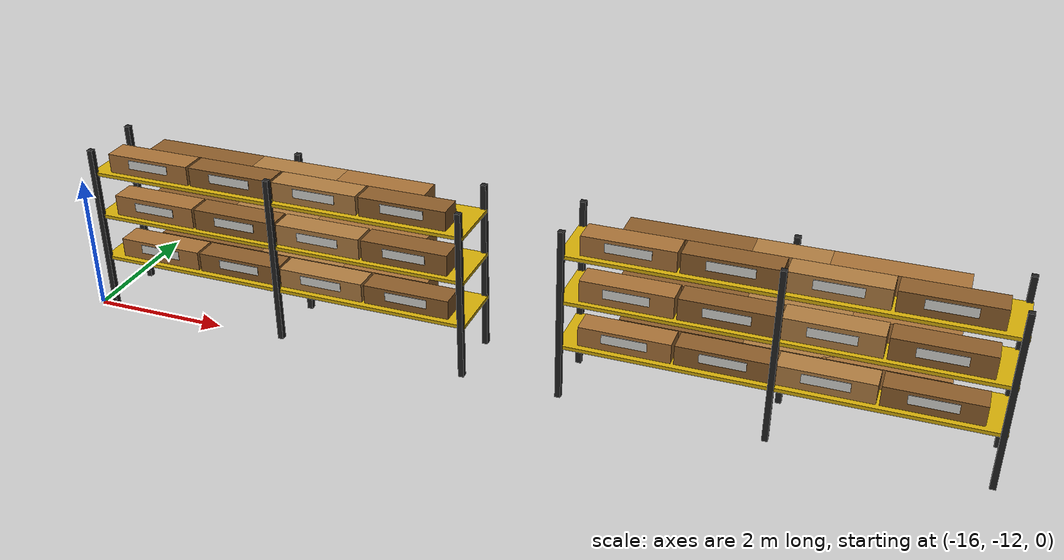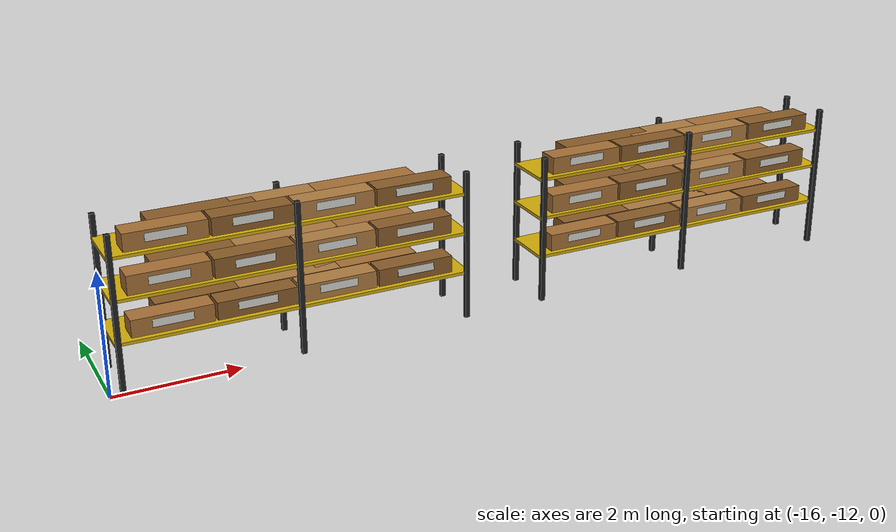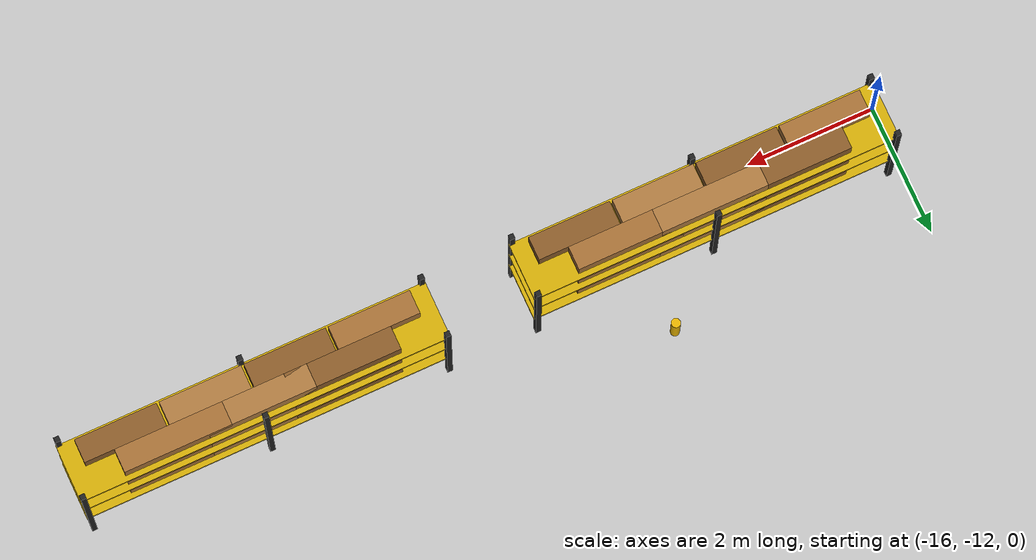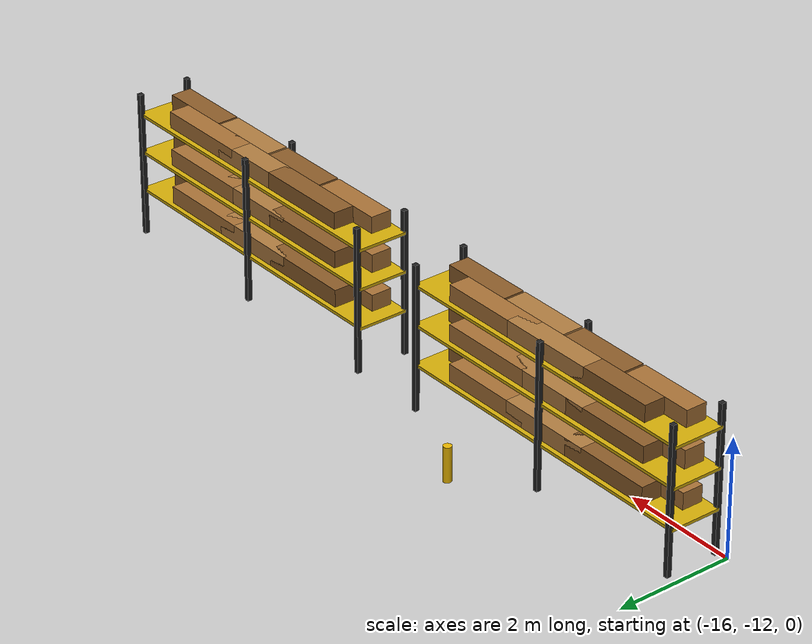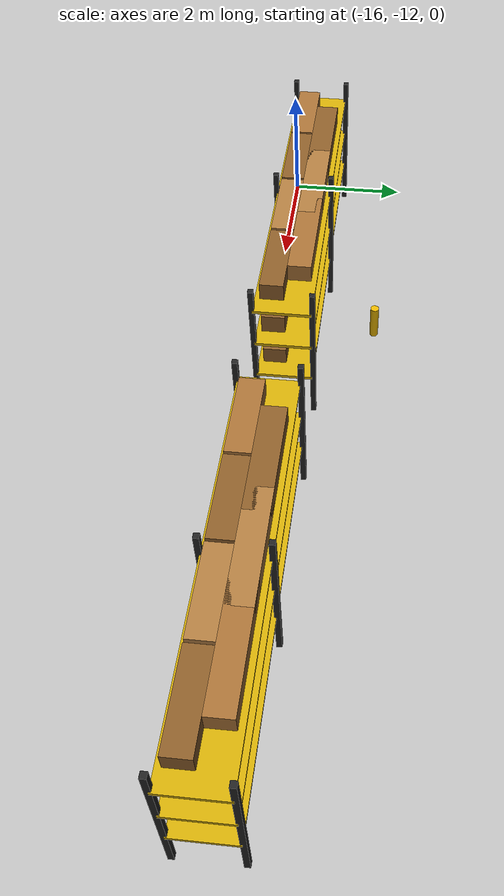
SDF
<sdf version="1.6">
 <world name="aws_industrial_warehouse">
  <model name="shelf_S2">
   <static>true</static>
   <pose>-13 -11.5 0 0 0 0</pose>
   <link name="pFL">
    <pose>-2.8 -0.45 1.25 0 0 0</pose>
    <collision name="c">
     <geometry><box><size>0.08 0.08 2.5</size></box></geometry>
     <surface><friction><ode><mu>1.0</mu><mu2>1.0</mu2></ode></friction></surface>
    </collision>
    <visual name="v">
     <geometry><box><size>0.08 0.08 2.5</size></box></geometry>
     <material><ambient>0.10 0.10 0.10 1</ambient><diffuse>0.13 0.13 0.13 1</diffuse></material>
    </visual>
   </link>
   <link name="pBL">
    <pose>-2.8 0.45 1.25 0 0 0</pose>
    <collision name="c">
     <geometry><box><size>0.08 0.08 2.5</size></box></geometry>
     <surface><friction><ode><mu>1.0</mu><mu2>1.0</mu2></ode></friction></surface>
    </collision>
    <visual name="v">
     <geometry><box><size>0.08 0.08 2.5</size></box></geometry>
     <material><ambient>0.10 0.10 0.10 1</ambient><diffuse>0.13 0.13 0.13 1</diffuse></material>
    </visual>
   </link>
   <link name="pFC">
    <pose>0.0 -0.45 1.25 0 0 0</pose>
    <collision name="c">
     <geometry><box><size>0.08 0.08 2.5</size></box></geometry>
     <surface><friction><ode><mu>1.0</mu><mu2>1.0</mu2></ode></friction></surface>
    </collision>
    <visual name="v">
     <geometry><box><size>0.08 0.08 2.5</size></box></geometry>
     <material><ambient>0.10 0.10 0.10 1</ambient><diffuse>0.13 0.13 0.13 1</diffuse></material>
    </visual>
   </link>
   <link name="pBC">
    <pose>0.0 0.45 1.25 0 0 0</pose>
    <collision name="c">
     <geometry><box><size>0.08 0.08 2.5</size></box></geometry>
     <surface><friction><ode><mu>1.0</mu><mu2>1.0</mu2></ode></friction></surface>
    </collision>
    <visual name="v">
     <geometry><box><size>0.08 0.08 2.5</size></box></geometry>
     <material><ambient>0.10 0.10 0.10 1</ambient><diffuse>0.13 0.13 0.13 1</diffuse></material>
    </visual>
   </link>
   <link name="pFR">
    <pose>2.8 -0.45 1.25 0 0 0</pose>
    <collision name="c">
     <geometry><box><size>0.08 0.08 2.5</size></box></geometry>
     <surface><friction><ode><mu>1.0</mu><mu2>1.0</mu2></ode></friction></surface>
    </collision>
    <visual name="v">
     <geometry><box><size>0.08 0.08 2.5</size></box></geometry>
     <material><ambient>0.10 0.10 0.10 1</ambient><diffuse>0.13 0.13 0.13 1</diffuse></material>
    </visual>
   </link>
   <link name="pBR">
    <pose>2.8 0.45 1.25 0 0 0</pose>
    <collision name="c">
     <geometry><box><size>0.08 0.08 2.5</size></box></geometry>
     <surface><friction><ode><mu>1.0</mu><mu2>1.0</mu2></ode></friction></surface>
    </collision>
    <visual name="v">
     <geometry><box><size>0.08 0.08 2.5</size></box></geometry>
     <material><ambient>0.10 0.10 0.10 1</ambient><diffuse>0.13 0.13 0.13 1</diffuse></material>
    </visual>
   </link>
   <link name="deck1">
    <pose>0 0 0.77 0 0 0</pose>
    <collision name="c">
     <geometry><box><size>5.7 0.88 0.05</size></box></geometry>
     <surface><friction><ode><mu>1.0</mu><mu2>1.0</mu2></ode></friction></surface>
    </collision>
    <visual name="v">
     <geometry><box><size>5.7 0.88 0.05</size></box></geometry>
     <material><ambient>0.70 0.55 0.02 1</ambient><diffuse>0.82 0.67 0.03 1</diffuse></material>
    </visual>
   </link>
   <link name="deck2">
    <pose>0 0 1.45 0 0 0</pose>
    <collision name="c">
     <geometry><box><size>5.7 0.88 0.05</size></box></geometry>
     <surface><friction><ode><mu>1.0</mu><mu2>1.0</mu2></ode></friction></surface>
    </collision>
    <visual name="v">
     <geometry><box><size>5.7 0.88 0.05</size></box></geometry>
     <material><ambient>0.70 0.55 0.02 1</ambient><diffuse>0.82 0.67 0.03 1</diffuse></material>
    </visual>
   </link>
   <link name="deck3">
    <pose>0 0 2.12 0 0 0</pose>
    <collision name="c">
     <geometry><box><size>5.7 0.88 0.05</size></box></geometry>
     <surface><friction><ode><mu>1.0</mu><mu2>1.0</mu2></ode></friction></surface>
    </collision>
    <visual name="v">
     <geometry><box><size>5.7 0.88 0.05</size></box></geometry>
     <material><ambient>0.70 0.55 0.02 1</ambient><diffuse>0.82 0.67 0.03 1</diffuse></material>
    </visual>
   </link>
   <link name="bF1_1">
    <pose>-1.95 -0.18 0.94 0 0 0</pose>
    <visual name="v">
     <geometry><box><size>1.26 0.36 0.28</size></box></geometry>
     <material><ambient>0.58 0.38 0.18 1</ambient><diffuse>0.65 0.44 0.21 1</diffuse></material>
    </visual>
   </link>
   <link name="lF1_1">
    <pose>-1.95 -0.363 0.97 0 0 0</pose>
    <visual name="v">
     <geometry><box><size>0.62 0.005 0.13</size></box></geometry>
     <material><ambient>0.76 0.76 0.74 1</ambient><diffuse>0.83 0.83 0.81 1</diffuse></material>
    </visual>
   </link>
   <link name="bF1_2">
    <pose>-0.65 -0.18 0.94 0 0 0</pose>
    <visual name="v">
     <geometry><box><size>1.26 0.36 0.28</size></box></geometry>
     <material><ambient>0.48 0.30 0.12 1</ambient><diffuse>0.54 0.36 0.16 1</diffuse></material>
    </visual>
   </link>
   <link name="lF1_2">
    <pose>-0.65 -0.363 0.97 0 0 0</pose>
    <visual name="v">
     <geometry><box><size>0.62 0.005 0.13</size></box></geometry>
     <material><ambient>0.76 0.76 0.74 1</ambient><diffuse>0.83 0.83 0.81 1</diffuse></material>
    </visual>
   </link>
   <link name="bF1_3">
    <pose>0.65 -0.18 0.94 0 0 0</pose>
    <visual name="v">
     <geometry><box><size>1.26 0.36 0.28</size></box></geometry>
     <material><ambient>0.62 0.43 0.22 1</ambient><diffuse>0.68 0.48 0.25 1</diffuse></material>
    </visual>
   </link>
   <link name="lF1_3">
    <pose>0.65 -0.363 0.97 0 0 0</pose>
    <visual name="v">
     <geometry><box><size>0.62 0.005 0.13</size></box></geometry>
     <material><ambient>0.76 0.76 0.74 1</ambient><diffuse>0.83 0.83 0.81 1</diffuse></material>
    </visual>
   </link>
   <link name="bF1_4">
    <pose>1.95 -0.18 0.94 0 0 0</pose>
    <visual name="v">
     <geometry><box><size>1.26 0.36 0.28</size></box></geometry>
     <material><ambient>0.48 0.30 0.12 1</ambient><diffuse>0.54 0.36 0.16 1</diffuse></material>
    </visual>
   </link>
   <link name="lF1_4">
    <pose>1.95 -0.363 0.97 0 0 0</pose>
    <visual name="v">
     <geometry><box><size>0.62 0.005 0.13</size></box></geometry>
     <material><ambient>0.76 0.76 0.74 1</ambient><diffuse>0.83 0.83 0.81 1</diffuse></material>
    </visual>
   </link>
   <link name="bB1_1">
    <pose>-1.3 0.18 0.94 0 0 0</pose>
    <visual name="v">
     <geometry><box><size>1.65 0.36 0.3</size></box></geometry>
     <material><ambient>0.48 0.30 0.12 1</ambient><diffuse>0.54 0.36 0.16 1</diffuse></material>
    </visual>
   </link>
   <link name="bB1_2">
    <pose>0.0 0.18 0.94 0 0 0</pose>
    <visual name="v">
     <geometry><box><size>1.65 0.36 0.3</size></box></geometry>
     <material><ambient>0.62 0.43 0.22 1</ambient><diffuse>0.68 0.48 0.25 1</diffuse></material>
    </visual>
   </link>
   <link name="bB1_3">
    <pose>1.3 0.18 0.94 0 0 0</pose>
    <visual name="v">
     <geometry><box><size>1.65 0.36 0.3</size></box></geometry>
     <material><ambient>0.58 0.38 0.18 1</ambient><diffuse>0.65 0.44 0.21 1</diffuse></material>
    </visual>
   </link>
   <link name="bF2_1">
    <pose>-1.95 -0.18 1.62 0 0 0</pose>
    <visual name="v">
     <geometry><box><size>1.26 0.36 0.32</size></box></geometry>
     <material><ambient>0.58 0.38 0.18 1</ambient><diffuse>0.65 0.44 0.21 1</diffuse></material>
    </visual>
   </link>
   <link name="lF2_1">
    <pose>-1.95 -0.363 1.6500000000000001 0 0 0</pose>
    <visual name="v">
     <geometry><box><size>0.62 0.005 0.13</size></box></geometry>
     <material><ambient>0.76 0.76 0.74 1</ambient><diffuse>0.83 0.83 0.81 1</diffuse></material>
    </visual>
   </link>
   <link name="bF2_2">
    <pose>-0.65 -0.18 1.62 0 0 0</pose>
    <visual name="v">
     <geometry><box><size>1.26 0.36 0.32</size></box></geometry>
     <material><ambient>0.48 0.30 0.12 1</ambient><diffuse>0.54 0.36 0.16 1</diffuse></material>
    </visual>
   </link>
   <link name="lF2_2">
    <pose>-0.65 -0.363 1.6500000000000001 0 0 0</pose>
    <visual name="v">
     <geometry><box><size>0.62 0.005 0.13</size></box></geometry>
     <material><ambient>0.76 0.76 0.74 1</ambient><diffuse>0.83 0.83 0.81 1</diffuse></material>
    </visual>
   </link>
   <link name="bF2_3">
    <pose>0.65 -0.18 1.62 0 0 0</pose>
    <visual name="v">
     <geometry><box><size>1.26 0.36 0.32</size></box></geometry>
     <material><ambient>0.62 0.43 0.22 1</ambient><diffuse>0.68 0.48 0.25 1</diffuse></material>
    </visual>
   </link>
   <link name="lF2_3">
    <pose>0.65 -0.363 1.6500000000000001 0 0 0</pose>
    <visual name="v">
     <geometry><box><size>0.62 0.005 0.13</size></box></geometry>
     <material><ambient>0.76 0.76 0.74 1</ambient><diffuse>0.83 0.83 0.81 1</diffuse></material>
    </visual>
   </link>
   <link name="bF2_4">
    <pose>1.95 -0.18 1.62 0 0 0</pose>
    <visual name="v">
     <geometry><box><size>1.26 0.36 0.32</size></box></geometry>
     <material><ambient>0.48 0.30 0.12 1</ambient><diffuse>0.54 0.36 0.16 1</diffuse></material>
    </visual>
   </link>
   <link name="lF2_4">
    <pose>1.95 -0.363 1.6500000000000001 0 0 0</pose>
    <visual name="v">
     <geometry><box><size>0.62 0.005 0.13</size></box></geometry>
     <material><ambient>0.76 0.76 0.74 1</ambient><diffuse>0.83 0.83 0.81 1</diffuse></material>
    </visual>
   </link>
   <link name="bB2_1">
    <pose>-1.3 0.18 1.62 0 0 0</pose>
    <visual name="v">
     <geometry><box><size>1.65 0.36 0.28</size></box></geometry>
     <material><ambient>0.48 0.30 0.12 1</ambient><diffuse>0.54 0.36 0.16 1</diffuse></material>
    </visual>
   </link>
   <link name="bB2_2">
    <pose>0.0 0.18 1.62 0 0 0</pose>
    <visual name="v">
     <geometry><box><size>1.65 0.36 0.28</size></box></geometry>
     <material><ambient>0.62 0.43 0.22 1</ambient><diffuse>0.68 0.48 0.25 1</diffuse></material>
    </visual>
   </link>
   <link name="bB2_3">
    <pose>1.3 0.18 1.62 0 0 0</pose>
    <visual name="v">
     <geometry><box><size>1.65 0.36 0.28</size></box></geometry>
     <material><ambient>0.58 0.38 0.18 1</ambient><diffuse>0.65 0.44 0.21 1</diffuse></material>
    </visual>
   </link>
   <link name="bF3_1">
    <pose>-1.95 -0.18 2.29 0 0 0</pose>
    <visual name="v">
     <geometry><box><size>1.26 0.36 0.28</size></box></geometry>
     <material><ambient>0.58 0.38 0.18 1</ambient><diffuse>0.65 0.44 0.21 1</diffuse></material>
    </visual>
   </link>
   <link name="lF3_1">
    <pose>-1.95 -0.363 2.32 0 0 0</pose>
    <visual name="v">
     <geometry><box><size>0.62 0.005 0.13</size></box></geometry>
     <material><ambient>0.76 0.76 0.74 1</ambient><diffuse>0.83 0.83 0.81 1</diffuse></material>
    </visual>
   </link>
   <link name="bF3_2">
    <pose>-0.65 -0.18 2.29 0 0 0</pose>
    <visual name="v">
     <geometry><box><size>1.26 0.36 0.28</size></box></geometry>
     <material><ambient>0.48 0.30 0.12 1</ambient><diffuse>0.54 0.36 0.16 1</diffuse></material>
    </visual>
   </link>
   <link name="lF3_2">
    <pose>-0.65 -0.363 2.32 0 0 0</pose>
    <visual name="v">
     <geometry><box><size>0.62 0.005 0.13</size></box></geometry>
     <material><ambient>0.76 0.76 0.74 1</ambient><diffuse>0.83 0.83 0.81 1</diffuse></material>
    </visual>
   </link>
   <link name="bF3_3">
    <pose>0.65 -0.18 2.29 0 0 0</pose>
    <visual name="v">
     <geometry><box><size>1.26 0.36 0.28</size></box></geometry>
     <material><ambient>0.62 0.43 0.22 1</ambient><diffuse>0.68 0.48 0.25 1</diffuse></material>
    </visual>
   </link>
   <link name="lF3_3">
    <pose>0.65 -0.363 2.32 0 0 0</pose>
    <visual name="v">
     <geometry><box><size>0.62 0.005 0.13</size></box></geometry>
     <material><ambient>0.76 0.76 0.74 1</ambient><diffuse>0.83 0.83 0.81 1</diffuse></material>
    </visual>
   </link>
   <link name="bF3_4">
    <pose>1.95 -0.18 2.29 0 0 0</pose>
    <visual name="v">
     <geometry><box><size>1.26 0.36 0.28</size></box></geometry>
     <material><ambient>0.48 0.30 0.12 1</ambient><diffuse>0.54 0.36 0.16 1</diffuse></material>
    </visual>
   </link>
   <link name="lF3_4">
    <pose>1.95 -0.363 2.32 0 0 0</pose>
    <visual name="v">
     <geometry><box><size>0.62 0.005 0.13</size></box></geometry>
     <material><ambient>0.76 0.76 0.74 1</ambient><diffuse>0.83 0.83 0.81 1</diffuse></material>
    </visual>
   </link>
   <link name="bB3_1">
    <pose>-1.3 0.18 2.29 0 0 0</pose>
    <visual name="v">
     <geometry><box><size>1.65 0.36 0.28</size></box></geometry>
     <material><ambient>0.48 0.30 0.12 1</ambient><diffuse>0.54 0.36 0.16 1</diffuse></material>
    </visual>
   </link>
   <link name="bB3_2">
    <pose>0.0 0.18 2.29 0 0 0</pose>
    <visual name="v">
     <geometry><box><size>1.65 0.36 0.28</size></box></geometry>
     <material><ambient>0.62 0.43 0.22 1</ambient><diffuse>0.68 0.48 0.25 1</diffuse></material>
    </visual>
   </link>
   <link name="bB3_3">
    <pose>1.3 0.18 2.29 0 0 0</pose>
    <visual name="v">
     <geometry><box><size>1.65 0.36 0.28</size></box></geometry>
     <material><ambient>0.58 0.38 0.18 1</ambient><diffuse>0.65 0.44 0.21 1</diffuse></material>
    </visual>
   </link>
  </model>
  <model name="shelf_S3">
   <static>true</static>
   <pose>-6 -11.5 0 0 0 0</pose>
   <link name="pFL">
    <pose>-2.8 -0.45 1.25 0 0 0</pose>
    <collision name="c">
     <geometry><box><size>0.08 0.08 2.5</size></box></geometry>
     <surface><friction><ode><mu>1.0</mu><mu2>1.0</mu2></ode></friction></surface>
    </collision>
    <visual name="v">
     <geometry><box><size>0.08 0.08 2.5</size></box></geometry>
     <material><ambient>0.10 0.10 0.10 1</ambient><diffuse>0.13 0.13 0.13 1</diffuse></material>
    </visual>
   </link>
   <link name="pBL">
    <pose>-2.8 0.45 1.25 0 0 0</pose>
    <collision name="c">
     <geometry><box><size>0.08 0.08 2.5</size></box></geometry>
     <surface><friction><ode><mu>1.0</mu><mu2>1.0</mu2></ode></friction></surface>
    </collision>
    <visual name="v">
     <geometry><box><size>0.08 0.08 2.5</size></box></geometry>
     <material><ambient>0.10 0.10 0.10 1</ambient><diffuse>0.13 0.13 0.13 1</diffuse></material>
    </visual>
   </link>
   <link name="pFC">
    <pose>0.0 -0.45 1.25 0 0 0</pose>
    <collision name="c">
     <geometry><box><size>0.08 0.08 2.5</size></box></geometry>
     <surface><friction><ode><mu>1.0</mu><mu2>1.0</mu2></ode></friction></surface>
    </collision>
    <visual name="v">
     <geometry><box><size>0.08 0.08 2.5</size></box></geometry>
     <material><ambient>0.10 0.10 0.10 1</ambient><diffuse>0.13 0.13 0.13 1</diffuse></material>
    </visual>
   </link>
   <link name="pBC">
    <pose>0.0 0.45 1.25 0 0 0</pose>
    <collision name="c">
     <geometry><box><size>0.08 0.08 2.5</size></box></geometry>
     <surface><friction><ode><mu>1.0</mu><mu2>1.0</mu2></ode></friction></surface>
    </collision>
    <visual name="v">
     <geometry><box><size>0.08 0.08 2.5</size></box></geometry>
     <material><ambient>0.10 0.10 0.10 1</ambient><diffuse>0.13 0.13 0.13 1</diffuse></material>
    </visual>
   </link>
   <link name="pFR">
    <pose>2.8 -0.45 1.25 0 0 0</pose>
    <collision name="c">
     <geometry><box><size>0.08 0.08 2.5</size></box></geometry>
     <surface><friction><ode><mu>1.0</mu><mu2>1.0</mu2></ode></friction></surface>
    </collision>
    <visual name="v">
     <geometry><box><size>0.08 0.08 2.5</size></box></geometry>
     <material><ambient>0.10 0.10 0.10 1</ambient><diffuse>0.13 0.13 0.13 1</diffuse></material>
    </visual>
   </link>
   <link name="pBR">
    <pose>2.8 0.45 1.25 0 0 0</pose>
    <collision name="c">
     <geometry><box><size>0.08 0.08 2.5</size></box></geometry>
     <surface><friction><ode><mu>1.0</mu><mu2>1.0</mu2></ode></friction></surface>
    </collision>
    <visual name="v">
     <geometry><box><size>0.08 0.08 2.5</size></box></geometry>
     <material><ambient>0.10 0.10 0.10 1</ambient><diffuse>0.13 0.13 0.13 1</diffuse></material>
    </visual>
   </link>
   <link name="deck1">
    <pose>0 0 0.77 0 0 0</pose>
    <collision name="c">
     <geometry><box><size>5.7 0.88 0.05</size></box></geometry>
     <surface><friction><ode><mu>1.0</mu><mu2>1.0</mu2></ode></friction></surface>
    </collision>
    <visual name="v">
     <geometry><box><size>5.7 0.88 0.05</size></box></geometry>
     <material><ambient>0.70 0.55 0.02 1</ambient><diffuse>0.82 0.67 0.03 1</diffuse></material>
    </visual>
   </link>
   <link name="deck2">
    <pose>0 0 1.45 0 0 0</pose>
    <collision name="c">
     <geometry><box><size>5.7 0.88 0.05</size></box></geometry>
     <surface><friction><ode><mu>1.0</mu><mu2>1.0</mu2></ode></friction></surface>
    </collision>
    <visual name="v">
     <geometry><box><size>5.7 0.88 0.05</size></box></geometry>
     <material><ambient>0.70 0.55 0.02 1</ambient><diffuse>0.82 0.67 0.03 1</diffuse></material>
    </visual>
   </link>
   <link name="deck3">
    <pose>0 0 2.12 0 0 0</pose>
    <collision name="c">
     <geometry><box><size>5.7 0.88 0.05</size></box></geometry>
     <surface><friction><ode><mu>1.0</mu><mu2>1.0</mu2></ode></friction></surface>
    </collision>
    <visual name="v">
     <geometry><box><size>5.7 0.88 0.05</size></box></geometry>
     <material><ambient>0.70 0.55 0.02 1</ambient><diffuse>0.82 0.67 0.03 1</diffuse></material>
    </visual>
   </link>
   <link name="bF1_1">
    <pose>-1.95 -0.18 0.94 0 0 0</pose>
    <visual name="v">
     <geometry><box><size>1.26 0.36 0.28</size></box></geometry>
     <material><ambient>0.58 0.38 0.18 1</ambient><diffuse>0.65 0.44 0.21 1</diffuse></material>
    </visual>
   </link>
   <link name="lF1_1">
    <pose>-1.95 -0.363 0.97 0 0 0</pose>
    <visual name="v">
     <geometry><box><size>0.62 0.005 0.13</size></box></geometry>
     <material><ambient>0.76 0.76 0.74 1</ambient><diffuse>0.83 0.83 0.81 1</diffuse></material>
    </visual>
   </link>
   <link name="bF1_2">
    <pose>-0.65 -0.18 0.94 0 0 0</pose>
    <visual name="v">
     <geometry><box><size>1.26 0.36 0.28</size></box></geometry>
     <material><ambient>0.48 0.30 0.12 1</ambient><diffuse>0.54 0.36 0.16 1</diffuse></material>
    </visual>
   </link>
   <link name="lF1_2">
    <pose>-0.65 -0.363 0.97 0 0 0</pose>
    <visual name="v">
     <geometry><box><size>0.62 0.005 0.13</size></box></geometry>
     <material><ambient>0.76 0.76 0.74 1</ambient><diffuse>0.83 0.83 0.81 1</diffuse></material>
    </visual>
   </link>
   <link name="bF1_3">
    <pose>0.65 -0.18 0.94 0 0 0</pose>
    <visual name="v">
     <geometry><box><size>1.26 0.36 0.28</size></box></geometry>
     <material><ambient>0.62 0.43 0.22 1</ambient><diffuse>0.68 0.48 0.25 1</diffuse></material>
    </visual>
   </link>
   <link name="lF1_3">
    <pose>0.65 -0.363 0.97 0 0 0</pose>
    <visual name="v">
     <geometry><box><size>0.62 0.005 0.13</size></box></geometry>
     <material><ambient>0.76 0.76 0.74 1</ambient><diffuse>0.83 0.83 0.81 1</diffuse></material>
    </visual>
   </link>
   <link name="bF1_4">
    <pose>1.95 -0.18 0.94 0 0 0</pose>
    <visual name="v">
     <geometry><box><size>1.26 0.36 0.28</size></box></geometry>
     <material><ambient>0.48 0.30 0.12 1</ambient><diffuse>0.54 0.36 0.16 1</diffuse></material>
    </visual>
   </link>
   <link name="lF1_4">
    <pose>1.95 -0.363 0.97 0 0 0</pose>
    <visual name="v">
     <geometry><box><size>0.62 0.005 0.13</size></box></geometry>
     <material><ambient>0.76 0.76 0.74 1</ambient><diffuse>0.83 0.83 0.81 1</diffuse></material>
    </visual>
   </link>
   <link name="bB1_1">
    <pose>-1.3 0.18 0.94 0 0 0</pose>
    <visual name="v">
     <geometry><box><size>1.65 0.36 0.3</size></box></geometry>
     <material><ambient>0.48 0.30 0.12 1</ambient><diffuse>0.54 0.36 0.16 1</diffuse></material>
    </visual>
   </link>
   <link name="bB1_2">
    <pose>0.0 0.18 0.94 0 0 0</pose>
    <visual name="v">
     <geometry><box><size>1.65 0.36 0.3</size></box></geometry>
     <material><ambient>0.62 0.43 0.22 1</ambient><diffuse>0.68 0.48 0.25 1</diffuse></material>
    </visual>
   </link>
   <link name="bB1_3">
    <pose>1.3 0.18 0.94 0 0 0</pose>
    <visual name="v">
     <geometry><box><size>1.65 0.36 0.3</size></box></geometry>
     <material><ambient>0.58 0.38 0.18 1</ambient><diffuse>0.65 0.44 0.21 1</diffuse></material>
    </visual>
   </link>
   <link name="bF2_1">
    <pose>-1.95 -0.18 1.62 0 0 0</pose>
    <visual name="v">
     <geometry><box><size>1.26 0.36 0.32</size></box></geometry>
     <material><ambient>0.58 0.38 0.18 1</ambient><diffuse>0.65 0.44 0.21 1</diffuse></material>
    </visual>
   </link>
   <link name="lF2_1">
    <pose>-1.95 -0.363 1.6500000000000001 0 0 0</pose>
    <visual name="v">
     <geometry><box><size>0.62 0.005 0.13</size></box></geometry>
     <material><ambient>0.76 0.76 0.74 1</ambient><diffuse>0.83 0.83 0.81 1</diffuse></material>
    </visual>
   </link>
   <link name="bF2_2">
    <pose>-0.65 -0.18 1.62 0 0 0</pose>
    <visual name="v">
     <geometry><box><size>1.26 0.36 0.32</size></box></geometry>
     <material><ambient>0.48 0.30 0.12 1</ambient><diffuse>0.54 0.36 0.16 1</diffuse></material>
    </visual>
   </link>
   <link name="lF2_2">
    <pose>-0.65 -0.363 1.6500000000000001 0 0 0</pose>
    <visual name="v">
     <geometry><box><size>0.62 0.005 0.13</size></box></geometry>
     <material><ambient>0.76 0.76 0.74 1</ambient><diffuse>0.83 0.83 0.81 1</diffuse></material>
    </visual>
   </link>
   <link name="bF2_3">
    <pose>0.65 -0.18 1.62 0 0 0</pose>
    <visual name="v">
     <geometry><box><size>1.26 0.36 0.32</size></box></geometry>
     <material><ambient>0.62 0.43 0.22 1</ambient><diffuse>0.68 0.48 0.25 1</diffuse></material>
    </visual>
   </link>
   <link name="lF2_3">
    <pose>0.65 -0.363 1.6500000000000001 0 0 0</pose>
    <visual name="v">
     <geometry><box><size>0.62 0.005 0.13</size></box></geometry>
     <material><ambient>0.76 0.76 0.74 1</ambient><diffuse>0.83 0.83 0.81 1</diffuse></material>
    </visual>
   </link>
   <link name="bF2_4">
    <pose>1.95 -0.18 1.62 0 0 0</pose>
    <visual name="v">
     <geometry><box><size>1.26 0.36 0.32</size></box></geometry>
     <material><ambient>0.48 0.30 0.12 1</ambient><diffuse>0.54 0.36 0.16 1</diffuse></material>
    </visual>
   </link>
   <link name="lF2_4">
    <pose>1.95 -0.363 1.6500000000000001 0 0 0</pose>
    <visual name="v">
     <geometry><box><size>0.62 0.005 0.13</size></box></geometry>
     <material><ambient>0.76 0.76 0.74 1</ambient><diffuse>0.83 0.83 0.81 1</diffuse></material>
    </visual>
   </link>
   <link name="bB2_1">
    <pose>-1.3 0.18 1.62 0 0 0</pose>
    <visual name="v">
     <geometry><box><size>1.65 0.36 0.28</size></box></geometry>
     <material><ambient>0.48 0.30 0.12 1</ambient><diffuse>0.54 0.36 0.16 1</diffuse></material>
    </visual>
   </link>
   <link name="bB2_2">
    <pose>0.0 0.18 1.62 0 0 0</pose>
    <visual name="v">
     <geometry><box><size>1.65 0.36 0.28</size></box></geometry>
     <material><ambient>0.62 0.43 0.22 1</ambient><diffuse>0.68 0.48 0.25 1</diffuse></material>
    </visual>
   </link>
   <link name="bB2_3">
    <pose>1.3 0.18 1.62 0 0 0</pose>
    <visual name="v">
     <geometry><box><size>1.65 0.36 0.28</size></box></geometry>
     <material><ambient>0.58 0.38 0.18 1</ambient><diffuse>0.65 0.44 0.21 1</diffuse></material>
    </visual>
   </link>
   <link name="bF3_1">
    <pose>-1.95 -0.18 2.29 0 0 0</pose>
    <visual name="v">
     <geometry><box><size>1.26 0.36 0.28</size></box></geometry>
     <material><ambient>0.58 0.38 0.18 1</ambient><diffuse>0.65 0.44 0.21 1</diffuse></material>
    </visual>
   </link>
   <link name="lF3_1">
    <pose>-1.95 -0.363 2.32 0 0 0</pose>
    <visual name="v">
     <geometry><box><size>0.62 0.005 0.13</size></box></geometry>
     <material><ambient>0.76 0.76 0.74 1</ambient><diffuse>0.83 0.83 0.81 1</diffuse></material>
    </visual>
   </link>
   <link name="bF3_2">
    <pose>-0.65 -0.18 2.29 0 0 0</pose>
    <visual name="v">
     <geometry><box><size>1.26 0.36 0.28</size></box></geometry>
     <material><ambient>0.48 0.30 0.12 1</ambient><diffuse>0.54 0.36 0.16 1</diffuse></material>
    </visual>
   </link>
   <link name="lF3_2">
    <pose>-0.65 -0.363 2.32 0 0 0</pose>
    <visual name="v">
     <geometry><box><size>0.62 0.005 0.13</size></box></geometry>
     <material><ambient>0.76 0.76 0.74 1</ambient><diffuse>0.83 0.83 0.81 1</diffuse></material>
    </visual>
   </link>
   <link name="bF3_3">
    <pose>0.65 -0.18 2.29 0 0 0</pose>
    <visual name="v">
     <geometry><box><size>1.26 0.36 0.28</size></box></geometry>
     <material><ambient>0.62 0.43 0.22 1</ambient><diffuse>0.68 0.48 0.25 1</diffuse></material>
    </visual>
   </link>
   <link name="lF3_3">
    <pose>0.65 -0.363 2.32 0 0 0</pose>
    <visual name="v">
     <geometry><box><size>0.62 0.005 0.13</size></box></geometry>
     <material><ambient>0.76 0.76 0.74 1</ambient><diffuse>0.83 0.83 0.81 1</diffuse></material>
    </visual>
   </link>
   <link name="bF3_4">
    <pose>1.95 -0.18 2.29 0 0 0</pose>
    <visual name="v">
     <geometry><box><size>1.26 0.36 0.28</size></box></geometry>
     <material><ambient>0.48 0.30 0.12 1</ambient><diffuse>0.54 0.36 0.16 1</diffuse></material>
    </visual>
   </link>
   <link name="lF3_4">
    <pose>1.95 -0.363 2.32 0 0 0</pose>
    <visual name="v">
     <geometry><box><size>0.62 0.005 0.13</size></box></geometry>
     <material><ambient>0.76 0.76 0.74 1</ambient><diffuse>0.83 0.83 0.81 1</diffuse></material>
    </visual>
   </link>
   <link name="bB3_1">
    <pose>-1.3 0.18 2.29 0 0 0</pose>
    <visual name="v">
     <geometry><box><size>1.65 0.36 0.28</size></box></geometry>
     <material><ambient>0.48 0.30 0.12 1</ambient><diffuse>0.54 0.36 0.16 1</diffuse></material>
    </visual>
   </link>
   <link name="bB3_2">
    <pose>0.0 0.18 2.29 0 0 0</pose>
    <visual name="v">
     <geometry><box><size>1.65 0.36 0.28</size></box></geometry>
     <material><ambient>0.62 0.43 0.22 1</ambient><diffuse>0.68 0.48 0.25 1</diffuse></material>
    </visual>
   </link>
   <link name="bB3_3">
    <pose>1.3 0.18 2.29 0 0 0</pose>
    <visual name="v">
     <geometry><box><size>1.65 0.36 0.28</size></box></geometry>
     <material><ambient>0.58 0.38 0.18 1</ambient><diffuse>0.65 0.44 0.21 1</diffuse></material>
    </visual>
   </link>
  </model>
  <model name="bol_AS">
   <static>true</static>
   <pose>-12 -10.2 0.3 0 0 0</pose>
   <link name="l">
    <collision name="c">
     <geometry><cylinder><radius>0.07</radius><length>0.6</length></cylinder></geometry>
    </collision>
    <visual name="v">
     <geometry><cylinder><radius>0.07</radius><length>0.6</length></cylinder></geometry>
     <material><ambient>0.80 0.60 0.0 1</ambient><diffuse>0.90 0.70 0.0 1</diffuse></material>
    </visual>
   </link>
  </model>
 </world>
</sdf>
